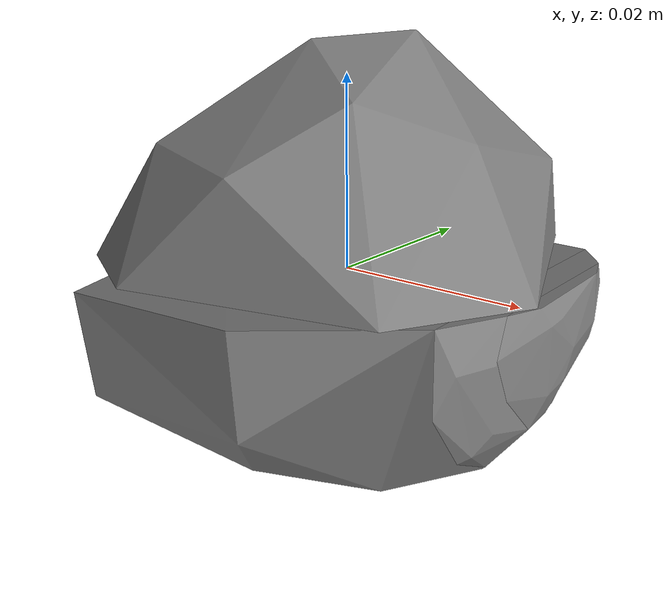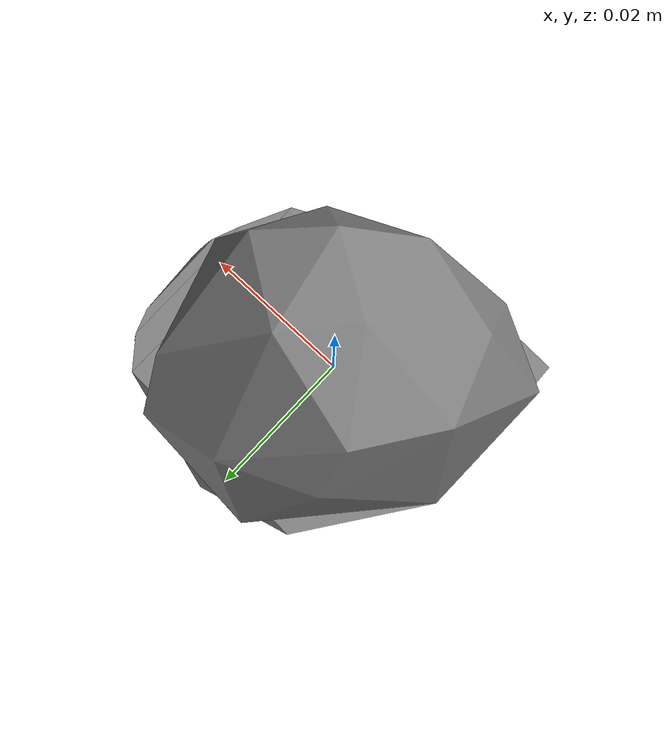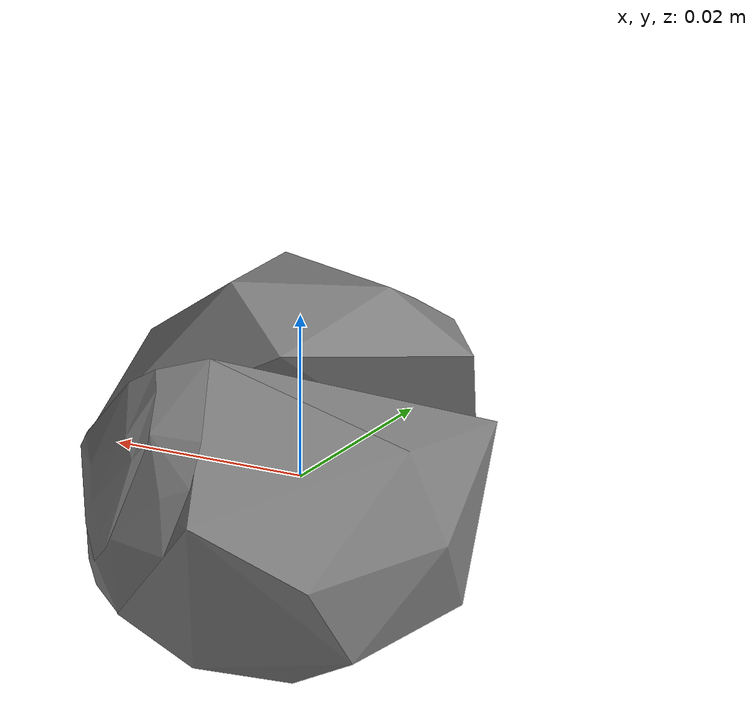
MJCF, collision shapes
<mujoco model="strawberry">
  <compiler angle="radian" />

  <asset>
    <mesh name="strawberry_visual_mesh" file="strawberry/textured.obj" />
    <mesh name="strawberry_collision_mesh_0" file="strawberry/textured_coacd_0.stl" />
    <mesh name="strawberry_collision_mesh_1" file="strawberry/textured_coacd_1.stl" />
    <mesh name="strawberry_collision_mesh_2" file="strawberry/textured_coacd_2.stl" />
    <mesh name="strawberry_collision_mesh_3" file="strawberry/textured_coacd_3.stl" />
    <texture name="strawberry_texture" type="2d" file="strawberry/texture_map.png" />
    <material name="strawberry_material" texture="strawberry_texture" />
  </asset>

  <worldbody>
    <body name="strawberry" pos="0 0 0" euler="0 0 0">
      <freejoint name="strawberry_joint" />
      <geom name="strawberry_visual_geom" type="mesh" mesh="strawberry_visual_mesh" material="strawberry_material" pos="0.0014938727773305587 -0.015432679933728788 -0.02111450326881559" euler="0 0 0" contype="0" conaffinity="0" group="0" />
      <geom name="strawberry_collision_geom_0" type="mesh" mesh="strawberry_collision_mesh_0" pos="0.0014938727773305587 -0.015432679933728788 -0.02111450326881559" euler="0 0 0" contype="1" conaffinity="1" group="3" />
      <geom name="strawberry_collision_geom_1" type="mesh" mesh="strawberry_collision_mesh_1" pos="0.0014938727773305587 -0.015432679933728788 -0.02111450326881559" euler="0 0 0" contype="1" conaffinity="1" group="3" />
      <geom name="strawberry_collision_geom_2" type="mesh" mesh="strawberry_collision_mesh_2" pos="0.0014938727773305587 -0.015432679933728788 -0.02111450326881559" euler="0 0 0" contype="1" conaffinity="1" group="3" />
      <geom name="strawberry_collision_geom_3" type="mesh" mesh="strawberry_collision_mesh_3" pos="0.0014938727773305587 -0.015432679933728788 -0.02111450326881559" euler="0 0 0" contype="1" conaffinity="1" group="3" />
      <inertial pos="0 0 0" euler="0 0 0" mass="0.018" diaginertia="0.001 0.001 0.001" />
    </body>
  </worldbody>
</mujoco>
